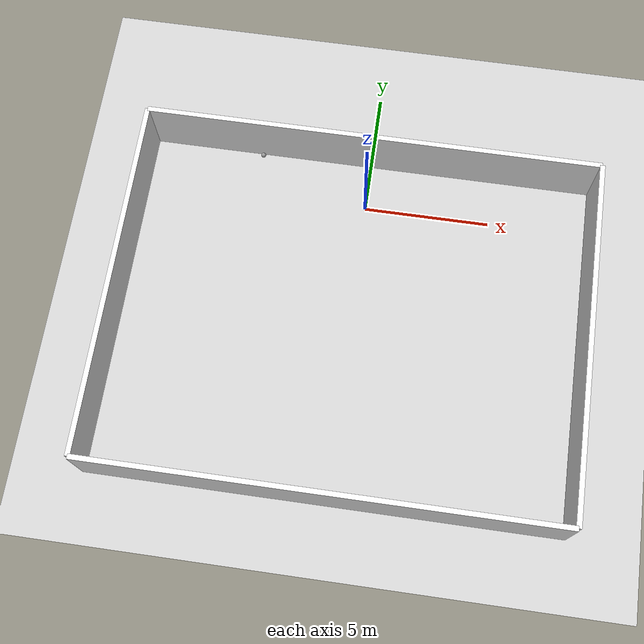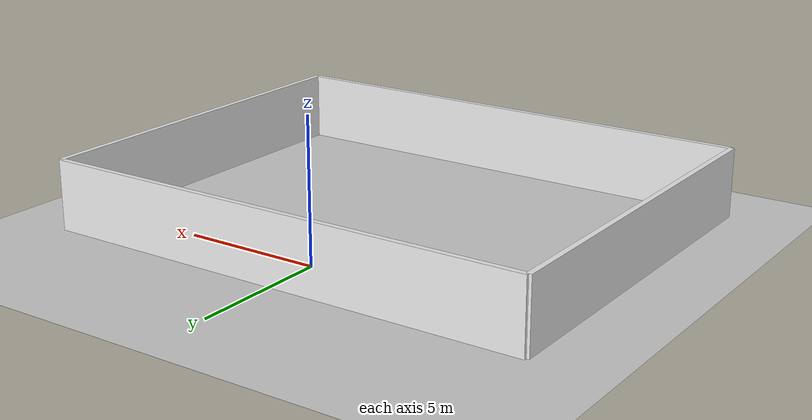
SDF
<sdf version="1.7">
 <world name="default">
  <model name="ground_plane">
   <static>1</static>
   <link name="link">
    <collision name="collision">
     <geometry><plane><normal>0 0 1</normal><size>100 100</size></plane></geometry>
     <surface>
      <contact><collide_bitmask>65535</collide_bitmask></contact>
      <friction><ode><mu>100</mu><mu2>50</mu2></ode></friction>
     </surface>
    </collision>
    <visual name="visual">
     <cast_shadows>0</cast_shadows>
     <geometry><plane><normal>0 0 1</normal><size>100 100</size></plane></geometry>
     <material>
      <script><uri>file://media/materials/scripts/gazebo.material</uri><name>Gazebo/Grey</name></script>
     </material>
    </visual>
   </link>
  </model>
  <light name="sun" type="directional">
   <pose>0 0 10 0 -0 0</pose>
   <diffuse>0.8 0.8 0.8 1</diffuse>
   <specular>0.2 0.2 0.2 1</specular>
   <attenuation>
    <range>1000</range>
    <constant>0.9</constant>
    <linear>0.01</linear>
    <quadratic>0.001</quadratic>
   </attenuation>
   <direction>-0.5 0.1 -0.9</direction>
   <spot><inner_angle>0</inner_angle><outer_angle>0</outer_angle><falloff>0</falloff></spot>
  </light>
  <gravity>0 0 -9.8</gravity>
  <magnetic_field>6e-06 2.3e-05 -4.2e-05</magnetic_field>
  <atmosphere type="adiabatic"/>
  <physics type="ode">
   <max_step_size>0.001</max_step_size>
   <real_time_factor>1</real_time_factor>
   <real_time_update_rate>1000</real_time_update_rate>
  </physics>
  <scene><ambient>0.4 0.4 0.4 1</ambient><background>0.7 0.7 0.7 1</background><shadows>1</shadows></scene>
  <spherical_coordinates>
   <surface_model>EARTH_WGS84</surface_model>
   <latitude_deg>0</latitude_deg>
   <longitude_deg>0</longitude_deg>
   <elevation>0</elevation>
   <heading_deg>0</heading_deg>
  </spherical_coordinates>
  <model name="my_ball">
   <link name="link_0">
    <inertial>
     <mass>1</mass>
     <inertia><ixx>0.1</ixx><ixy>0</ixy><ixz>0</ixz><iyy>0.1</iyy><iyz>0</iyz><izz>0.1</izz></inertia>
    </inertial>
    <pose>-0 4e-06 0 0 -0 0</pose>
    <visual name="visual">
     <geometry><sphere><radius>0.1</radius></sphere></geometry>
     <material>
      <lighting>1</lighting>
      <script><uri>file://media/materials/scripts/gazebo.material</uri><name>Gazebo/Grey</name></script>
      <shader type="pixel"><normal_map>__default__</normal_map></shader>
      <ambient>1 1 1 1</ambient>
      <diffuse>1 1 1 1</diffuse>
      <specular>1 1 1 1</specular>
      <emissive>1 1 1 1</emissive>
     </material>
    </visual>
    <collision name="collision">
     <geometry><sphere><radius>0.1</radius></sphere></geometry>
     <surface>
      <friction>
       <ode><mu>1</mu><mu2>1</mu2><fdir1>0 0 0</fdir1><slip1>0</slip1><slip2>0</slip2></ode>
       <torsional>
        <coefficient>1</coefficient>
        <patch_radius>0</patch_radius>
        <surface_radius>0</surface_radius>
        <use_patch_radius>1</use_patch_radius>
        <ode><slip>0</slip></ode>
       </torsional>
      </friction>
      <bounce><restitution_coefficient>0</restitution_coefficient><threshold>1e+06</threshold></bounce>
      <contact>
       <collide_without_contact>0</collide_without_contact>
       <collide_without_contact_bitmask>1</collide_without_contact_bitmask>
       <collide_bitmask>1</collide_bitmask>
       <ode>
        <soft_cfm>0</soft_cfm>
        <soft_erp>0.2</soft_erp>
        <kp>1e+13</kp>
        <kd>1</kd>
        <max_vel>0.01</max_vel>
        <min_depth>0</min_depth>
       </ode>
       <bullet>
        <split_impulse>1</split_impulse>
        <split_impulse_penetration_threshold>-0.01</split_impulse_penetration_threshold>
        <soft_cfm>0</soft_cfm>
        <soft_erp>0.2</soft_erp>
        <kp>1e+13</kp>
        <kd>1</kd>
       </bullet>
      </contact>
     </surface>
    </collision>
   </link>
   <static>0</static>
   <pose>-4.48969 1.8 0.099996 0.587752 -0.525047 0.020188</pose>
  </model>
  <model name="boundary_walls">
   <static>1</static>
   <link name="north_wall">
    <pose>0 2 1.25 0 -0 0</pose>
    <collision name="north_wall_collision"><geometry><box><size>18 0.2 2.5</size></box></geometry></collision>
    <visual name="north_wall_visual">
     <geometry><box><size>18 0.2 2.5</size></box></geometry>
     <material>
      <script><uri>file://media/materials/scripts/gazebo.material</uri><name>Gazebo/White</name></script>
      <ambient>0.85 0.85 0.85 1</ambient>
     </material>
    </visual>
   </link>
   <link name="south_wall">
    <pose>0 -12 1.25 0 -0 0</pose>
    <collision name="south_wall_collision"><geometry><box><size>18 0.2 2.5</size></box></geometry></collision>
    <visual name="south_wall_visual">
     <geometry><box><size>18 0.2 2.5</size></box></geometry>
     <material>
      <script><uri>file://media/materials/scripts/gazebo.material</uri><name>Gazebo/White</name></script>
      <ambient>0.85 0.85 0.85 1</ambient>
     </material>
    </visual>
   </link>
   <link name="east_wall">
    <pose>9 -5 1.25 0 -0 0</pose>
    <collision name="east_wall_collision"><geometry><box><size>0.2 14 2.5</size></box></geometry></collision>
    <visual name="east_wall_visual">
     <geometry><box><size>0.2 14 2.5</size></box></geometry>
     <material>
      <script><uri>file://media/materials/scripts/gazebo.material</uri><name>Gazebo/White</name></script>
      <ambient>0.85 0.85 0.85 1</ambient>
     </material>
    </visual>
   </link>
   <link name="west_wall">
    <pose>-9 -5 1.25 0 -0 0</pose>
    <collision name="west_wall_collision"><geometry><box><size>0.2 14 2.5</size></box></geometry></collision>
    <visual name="west_wall_visual">
     <geometry><box><size>0.2 14 2.5</size></box></geometry>
     <material>
      <script><uri>file://media/materials/scripts/gazebo.material</uri><name>Gazebo/White</name></script>
      <ambient>0.85 0.85 0.85 1</ambient>
     </material>
    </visual>
   </link>
  </model>
 </world>
</sdf>
